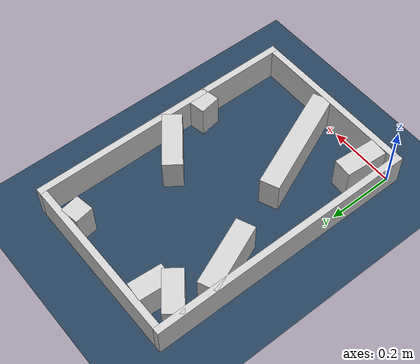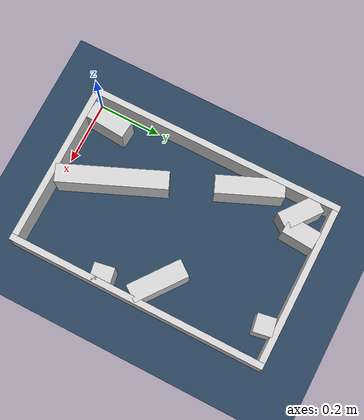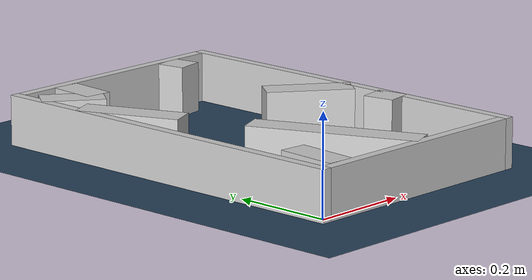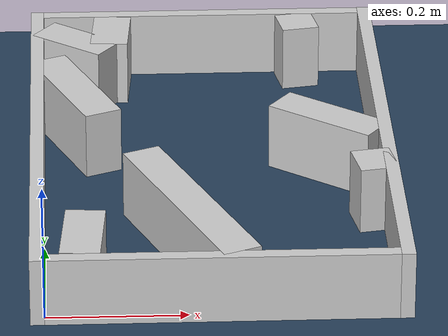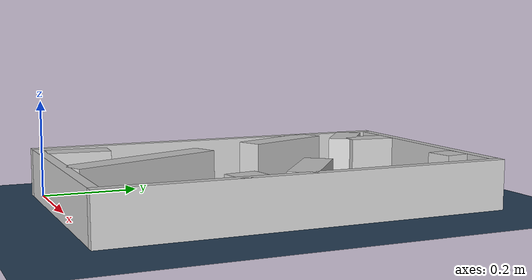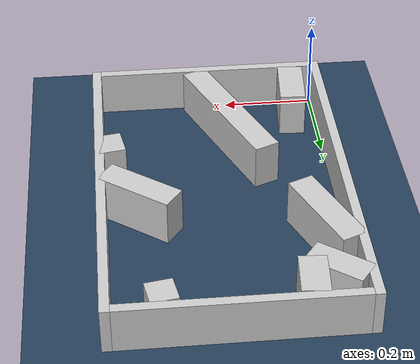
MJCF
<?xml version="1.0" ?>
<mujoco model="generated_real_template">
  <compiler angle="degree"/>
  <option timestep="0.002" integrator="implicitfast" iterations="100" cone="elliptic"/>
  <default>
    <geom density="1"/>
  </default>
  <asset>
    <texture builtin="gradient" height="3072" rgb1="0.3 0.5 0.7" rgb2="0 0 0" type="skybox" width="512"/>
    <texture builtin="checker" height="300" mark="edge" markrgb="0.8 0.8 0.8" name="groundplane" rgb1="0.2 0.3 0.4" rgb2="0.1 0.2 0.3" type="2d" width="300"/>
    <material name="groundplane" reflectance="0.2" texrepeat="5 5" texture="groundplane" texuniform="true"/>
  </asset>
  <worldbody>
    <light dir="0 0 -1" directional="true" pos="0 0 1.5"/>
    <geom name="floor" type="plane" condim="4" friction="0.5 0.005 0.001" material="groundplane" size="0 0 0.05"/>
    <body name="walls">
      <geom name="wall_boundary_left" type="box" condim="4" friction="1.0 0.005 0.0001" rgba="0.8 0.8 0.8 1" pos="-0.010000 0.387500 0.050000" euler="0 0 0.000000" size="0.010000 0.407500 0.050000"/>
      <geom name="wall_boundary_right" type="box" condim="4" friction="1.0 0.005 0.0001" rgba="0.8 0.8 0.8 1" pos="0.500000 0.387500 0.050000" euler="0 0 0.000000" size="0.010000 0.407500 0.050000"/>
      <geom name="wall_boundary_bottom" type="box" condim="4" friction="1.0 0.005 0.0001" rgba="0.8 0.8 0.8 1" pos="0.245000 -0.010000 0.050000" euler="0 0 0.000000" size="0.245000 0.010000 0.050000"/>
      <geom name="wall_boundary_top" type="box" condim="4" friction="1.0 0.005 0.0001" rgba="0.8 0.8 0.8 1" pos="0.245000 0.785000 0.050000" euler="0 0 0.000000" size="0.245000 0.010000 0.050000"/>
      <geom name="wall_inner_1_1" type="box" condim="4" friction="1.0 0.005 0.0001" rgba="0.8 0.8 0.8 1" pos="0.393056 0.746889 0.050000" euler="0 0 -80.110496" size="0.028535 0.028500 0.050000"/>
      <geom name="wall_inner_1_2" type="box" condim="4" friction="1.0 0.005 0.0001" rgba="0.8 0.8 0.8 1" pos="0.476448 0.268557 0.050000" euler="0 0 -80.110496" size="0.031876 0.028500 0.050000"/>
      <geom name="wall_inner_2_1" type="box" condim="4" friction="1.0 0.005 0.0001" rgba="0.8 0.8 0.8 1" pos="0.050117 0.696860 0.050000" euler="0 0 -36.849366" size="0.062629 0.028500 0.050000"/>
      <geom name="wall_inner_2_2" type="box" condim="4" friction="1.0 0.005 0.0001" rgba="0.8 0.8 0.8 1" pos="0.420288 0.419438 0.050000" euler="0 0 -36.849366" size="0.087116 0.028500 0.050000"/>
      <geom name="wall_inner_3_1" type="box" condim="4" friction="1.0 0.005 0.0001" rgba="0.8 0.8 0.8 1" pos="0.103280 0.725343 0.050000" euler="0 0 -94.261046" size="0.049795 0.028500 0.050000"/>
      <geom name="wall_inner_3_2" type="box" condim="4" friction="1.0 0.005 0.0001" rgba="0.8 0.8 0.8 1" pos="0.054004 0.063975 0.050000" euler="0 0 -94.261046" size="0.064152 0.028500 0.050000"/>
      <geom name="wall_inner_4_1" type="box" condim="4" friction="1.0 0.005 0.0001" rgba="0.8 0.8 0.8 1" pos="0.206969 0.156062 0.050000" euler="0 0 113.109213" size="0.169677 0.028500 0.050000"/>
      <geom name="wall_inner_4_2" type="box" condim="4" friction="1.0 0.005 0.0001" rgba="0.8 0.8 0.8 1" pos="0.047081 0.530748 0.050000" euler="0 0 113.109213" size="0.104124 0.028500 0.050000"/>
    </body>
  </worldbody>
</mujoco>
